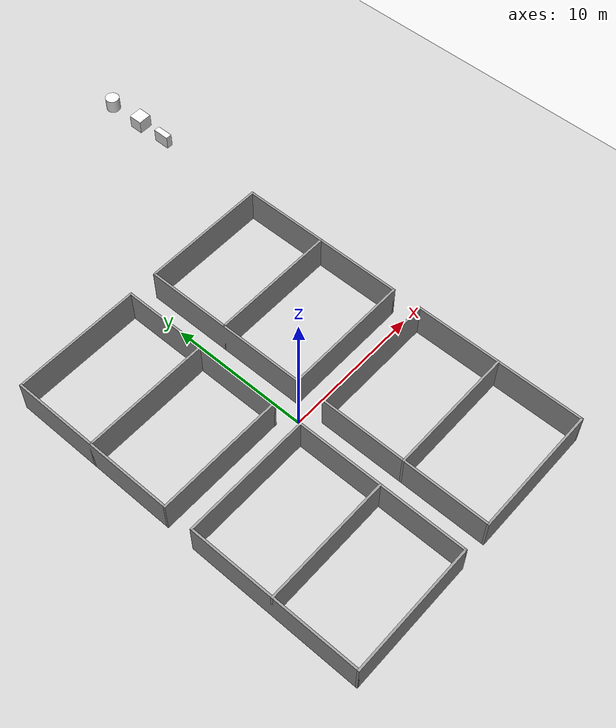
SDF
<sdf version="1.7">
 <world name="default">
  <light name="sun" type="directional">
   <pose>0 0 10 0 -0 0</pose>
   <diffuse>0.8 0.8 0.8 1</diffuse>
   <specular>0.2 0.2 0.2 1</specular>
   <attenuation>
    <range>1000</range>
    <constant>0.9</constant>
    <linear>0.01</linear>
    <quadratic>0.001</quadratic>
   </attenuation>
   <direction>-0.5 0.1 -0.9</direction>
   <spot><inner_angle>0</inner_angle><outer_angle>0</outer_angle><falloff>0</falloff></spot>
  </light>
  <model name="ground_plane">
   <static>1</static>
   <link name="link">
    <collision name="collision">
     <geometry><plane><normal>0 0 1</normal><size>100 100</size></plane></geometry>
     <surface>
      <contact><collide_bitmask>65535</collide_bitmask></contact>
      <friction><ode><mu>100</mu><mu2>50</mu2></ode></friction>
     </surface>
    </collision>
    <visual name="visual">
     <cast_shadows>0</cast_shadows>
     <geometry><plane><normal>0 0 1</normal><size>100 100</size></plane></geometry>
     <material>
      <script><uri>file://media/materials/scripts/gazebo.material</uri><name>Gazebo/Grey</name></script>
     </material>
    </visual>
   </link>
  </model>
  <gravity>0 0 -9.8</gravity>
  <magnetic_field>6e-06 2.3e-05 -4.2e-05</magnetic_field>
  <atmosphere type="adiabatic"/>
  <physics type="ode">
   <max_step_size>0.001</max_step_size>
   <real_time_factor>1</real_time_factor>
   <real_time_update_rate>1000</real_time_update_rate>
  </physics>
  <scene><ambient>0.4 0.4 0.4 1</ambient><background>0.7 0.7 0.7 1</background><shadows>1</shadows></scene>
  <spherical_coordinates>
   <surface_model>EARTH_WGS84</surface_model>
   <latitude_deg>0</latitude_deg>
   <longitude_deg>0</longitude_deg>
   <elevation>0</elevation>
   <heading_deg>0</heading_deg>
  </spherical_coordinates>
  <model name="Unit_Room_0">
   <pose>5.0375 6.5375 0 0 -0 0</pose>
   <link name="Wall_11">
    <collision name="Wall_11_Collision">
     <geometry><box><size>12.15 0.15 2.5</size></box></geometry>
     <pose>0 0 1.25 0 -0 0</pose>
    </collision>
    <visual name="Wall_11_Visual">
     <pose>0 0 1.25 0 -0 0</pose>
     <geometry><box><size>12.15 0.15 2.5</size></box></geometry>
     <material>
      <script><uri>file://media/materials/scripts/gazebo.material</uri><name>Gazebo/Grey</name></script>
      <ambient>1 1 1 1</ambient>
     </material>
     <meta><layer>0</layer></meta>
    </visual>
    <pose>4.9625 0.4625 0 0 -0 1.5708</pose>
   </link>
   <link name="Wall_3">
    <collision name="Wall_3_Collision">
     <geometry><box><size>9.15 0.15 2.5</size></box></geometry>
     <pose>0 0 1.25 0 -0 0</pose>
    </collision>
    <visual name="Wall_3_Visual">
     <pose>0 0 1.25 0 -0 0</pose>
     <geometry><box><size>9.15 0.15 2.5</size></box></geometry>
     <material>
      <script><uri>file://media/materials/scripts/gazebo.material</uri><name>Gazebo/Grey</name></script>
      <ambient>1 1 1 1</ambient>
     </material>
     <meta><layer>0</layer></meta>
    </visual>
    <pose>0.4625 -5.5375 0 0 -0 0</pose>
   </link>
   <link name="Wall_5">
    <collision name="Wall_5_Collision">
     <geometry><box><size>9.15 0.15 2.5</size></box></geometry>
     <pose>0 0 1.25 0 -0 0</pose>
    </collision>
    <visual name="Wall_5_Visual">
     <pose>0 0 1.25 0 -0 0</pose>
     <geometry><box><size>9.15 0.15 2.5</size></box></geometry>
     <material>
      <script><uri>file://media/materials/scripts/gazebo.material</uri><name>Gazebo/Grey</name></script>
      <ambient>1 1 1 1</ambient>
     </material>
     <meta><layer>0</layer></meta>
    </visual>
    <pose>0.4625 0.4625 0 0 -0 0</pose>
   </link>
   <link name="Wall_7">
    <collision name="Wall_7_Collision">
     <geometry><box><size>9.15 0.15 2.5</size></box></geometry>
     <pose>0 0 1.25 0 -0 0</pose>
    </collision>
    <visual name="Wall_7_Visual">
     <pose>0 0 1.25 0 -0 0</pose>
     <geometry><box><size>9.15 0.15 2.5</size></box></geometry>
     <material>
      <script><uri>file://media/materials/scripts/gazebo.material</uri><name>Gazebo/Grey</name></script>
      <ambient>1 1 1 1</ambient>
     </material>
     <meta><layer>0</layer></meta>
    </visual>
    <pose>0.4625 6.4625 0 0 -0 0</pose>
   </link>
   <link name="Wall_9">
    <collision name="Wall_9_Collision">
     <geometry><box><size>12.15 0.15 2.5</size></box></geometry>
     <pose>0 0 1.25 0 -0 0</pose>
    </collision>
    <visual name="Wall_9_Visual">
     <pose>0 0 1.25 0 -0 0</pose>
     <geometry><box><size>12.15 0.15 2.5</size></box></geometry>
     <material>
      <script><uri>file://media/materials/scripts/gazebo.material</uri><name>Gazebo/Grey</name></script>
      <ambient>1 1 1 1</ambient>
     </material>
     <meta><layer>0</layer></meta>
    </visual>
    <pose>-4.0375 0.4625 0 0 -0 1.5708</pose>
   </link>
   <static>1</static>
  </model>
  <model name="Unit_Room_1">
   <pose>5.0375 -7.5375 0 0 -0 0</pose>
   <link name="Wall_11">
    <collision name="Wall_11_Collision">
     <geometry><box><size>12.15 0.15 2.5</size></box></geometry>
     <pose>0 0 1.25 0 -0 0</pose>
    </collision>
    <visual name="Wall_11_Visual">
     <pose>0 0 1.25 0 -0 0</pose>
     <geometry><box><size>12.15 0.15 2.5</size></box></geometry>
     <material>
      <script><uri>file://media/materials/scripts/gazebo.material</uri><name>Gazebo/Grey</name></script>
      <ambient>1 1 1 1</ambient>
     </material>
     <meta><layer>0</layer></meta>
    </visual>
    <pose>4.9625 0.4625 0 0 -0 1.5708</pose>
   </link>
   <link name="Wall_3">
    <collision name="Wall_3_Collision">
     <geometry><box><size>9.15 0.15 2.5</size></box></geometry>
     <pose>0 0 1.25 0 -0 0</pose>
    </collision>
    <visual name="Wall_3_Visual">
     <pose>0 0 1.25 0 -0 0</pose>
     <geometry><box><size>9.15 0.15 2.5</size></box></geometry>
     <material>
      <script><uri>file://media/materials/scripts/gazebo.material</uri><name>Gazebo/Grey</name></script>
      <ambient>1 1 1 1</ambient>
     </material>
     <meta><layer>0</layer></meta>
    </visual>
    <pose>0.4625 -5.5375 0 0 -0 0</pose>
   </link>
   <link name="Wall_5">
    <collision name="Wall_5_Collision">
     <geometry><box><size>9.15 0.15 2.5</size></box></geometry>
     <pose>0 0 1.25 0 -0 0</pose>
    </collision>
    <visual name="Wall_5_Visual">
     <pose>0 0 1.25 0 -0 0</pose>
     <geometry><box><size>9.15 0.15 2.5</size></box></geometry>
     <material>
      <script><uri>file://media/materials/scripts/gazebo.material</uri><name>Gazebo/Grey</name></script>
      <ambient>1 1 1 1</ambient>
     </material>
     <meta><layer>0</layer></meta>
    </visual>
    <pose>0.4625 0.4625 0 0 -0 0</pose>
   </link>
   <link name="Wall_7">
    <collision name="Wall_7_Collision">
     <geometry><box><size>9.15 0.15 2.5</size></box></geometry>
     <pose>0 0 1.25 0 -0 0</pose>
    </collision>
    <visual name="Wall_7_Visual">
     <pose>0 0 1.25 0 -0 0</pose>
     <geometry><box><size>9.15 0.15 2.5</size></box></geometry>
     <material>
      <script><uri>file://media/materials/scripts/gazebo.material</uri><name>Gazebo/Grey</name></script>
      <ambient>1 1 1 1</ambient>
     </material>
     <meta><layer>0</layer></meta>
    </visual>
    <pose>0.4625 6.4625 0 0 -0 0</pose>
   </link>
   <link name="Wall_9">
    <collision name="Wall_9_Collision">
     <geometry><box><size>12.15 0.15 2.5</size></box></geometry>
     <pose>0 0 1.25 0 -0 0</pose>
    </collision>
    <visual name="Wall_9_Visual">
     <pose>0 0 1.25 0 -0 0</pose>
     <geometry><box><size>12.15 0.15 2.5</size></box></geometry>
     <material>
      <script><uri>file://media/materials/scripts/gazebo.material</uri><name>Gazebo/Grey</name></script>
      <ambient>1 1 1 1</ambient>
     </material>
     <meta><layer>0</layer></meta>
    </visual>
    <pose>-4.0375 0.4625 0 0 -0 1.5708</pose>
   </link>
   <static>1</static>
  </model>
  <model name="Unit_Room_2">
   <pose>-6.0375 6.5375 0 0 -0 0</pose>
   <link name="Wall_11">
    <collision name="Wall_11_Collision">
     <geometry><box><size>12.15 0.15 2.5</size></box></geometry>
     <pose>0 0 1.25 0 -0 0</pose>
    </collision>
    <visual name="Wall_11_Visual">
     <pose>0 0 1.25 0 -0 0</pose>
     <geometry><box><size>12.15 0.15 2.5</size></box></geometry>
     <material>
      <script><uri>file://media/materials/scripts/gazebo.material</uri><name>Gazebo/Grey</name></script>
      <ambient>1 1 1 1</ambient>
     </material>
     <meta><layer>0</layer></meta>
    </visual>
    <pose>4.9625 0.4625 0 0 -0 1.5708</pose>
   </link>
   <link name="Wall_3">
    <collision name="Wall_3_Collision">
     <geometry><box><size>9.15 0.15 2.5</size></box></geometry>
     <pose>0 0 1.25 0 -0 0</pose>
    </collision>
    <visual name="Wall_3_Visual">
     <pose>0 0 1.25 0 -0 0</pose>
     <geometry><box><size>9.15 0.15 2.5</size></box></geometry>
     <material>
      <script><uri>file://media/materials/scripts/gazebo.material</uri><name>Gazebo/Grey</name></script>
      <ambient>1 1 1 1</ambient>
     </material>
     <meta><layer>0</layer></meta>
    </visual>
    <pose>0.4625 -5.5375 0 0 -0 0</pose>
   </link>
   <link name="Wall_5">
    <collision name="Wall_5_Collision">
     <geometry><box><size>9.15 0.15 2.5</size></box></geometry>
     <pose>0 0 1.25 0 -0 0</pose>
    </collision>
    <visual name="Wall_5_Visual">
     <pose>0 0 1.25 0 -0 0</pose>
     <geometry><box><size>9.15 0.15 2.5</size></box></geometry>
     <material>
      <script><uri>file://media/materials/scripts/gazebo.material</uri><name>Gazebo/Grey</name></script>
      <ambient>1 1 1 1</ambient>
     </material>
     <meta><layer>0</layer></meta>
    </visual>
    <pose>0.4625 0.4625 0 0 -0 0</pose>
   </link>
   <link name="Wall_7">
    <collision name="Wall_7_Collision">
     <geometry><box><size>9.15 0.15 2.5</size></box></geometry>
     <pose>0 0 1.25 0 -0 0</pose>
    </collision>
    <visual name="Wall_7_Visual">
     <pose>0 0 1.25 0 -0 0</pose>
     <geometry><box><size>9.15 0.15 2.5</size></box></geometry>
     <material>
      <script><uri>file://media/materials/scripts/gazebo.material</uri><name>Gazebo/Grey</name></script>
      <ambient>1 1 1 1</ambient>
     </material>
     <meta><layer>0</layer></meta>
    </visual>
    <pose>0.4625 6.4625 0 0 -0 0</pose>
   </link>
   <link name="Wall_9">
    <collision name="Wall_9_Collision">
     <geometry><box><size>12.15 0.15 2.5</size></box></geometry>
     <pose>0 0 1.25 0 -0 0</pose>
    </collision>
    <visual name="Wall_9_Visual">
     <pose>0 0 1.25 0 -0 0</pose>
     <geometry><box><size>12.15 0.15 2.5</size></box></geometry>
     <material>
      <script><uri>file://media/materials/scripts/gazebo.material</uri><name>Gazebo/Grey</name></script>
      <ambient>1 1 1 1</ambient>
     </material>
     <meta><layer>0</layer></meta>
    </visual>
    <pose>-4.0375 0.4625 0 0 -0 1.5708</pose>
   </link>
   <static>1</static>
  </model>
  <model name="Unit_Room_3">
   <pose>-6.0375 -7.5375 0 0 -0 0</pose>
   <link name="Wall_11">
    <collision name="Wall_11_Collision">
     <geometry><box><size>12.15 0.15 2.5</size></box></geometry>
     <pose>0 0 1.25 0 -0 0</pose>
    </collision>
    <visual name="Wall_11_Visual">
     <pose>0 0 1.25 0 -0 0</pose>
     <geometry><box><size>12.15 0.15 2.5</size></box></geometry>
     <material>
      <script><uri>file://media/materials/scripts/gazebo.material</uri><name>Gazebo/Grey</name></script>
      <ambient>1 1 1 1</ambient>
     </material>
     <meta><layer>0</layer></meta>
    </visual>
    <pose>4.9625 0.4625 0 0 -0 1.5708</pose>
   </link>
   <link name="Wall_3">
    <collision name="Wall_3_Collision">
     <geometry><box><size>9.15 0.15 2.5</size></box></geometry>
     <pose>0 0 1.25 0 -0 0</pose>
    </collision>
    <visual name="Wall_3_Visual">
     <pose>0 0 1.25 0 -0 0</pose>
     <geometry><box><size>9.15 0.15 2.5</size></box></geometry>
     <material>
      <script><uri>file://media/materials/scripts/gazebo.material</uri><name>Gazebo/Grey</name></script>
      <ambient>1 1 1 1</ambient>
     </material>
     <meta><layer>0</layer></meta>
    </visual>
    <pose>0.4625 -5.5375 0 0 -0 0</pose>
   </link>
   <link name="Wall_5">
    <collision name="Wall_5_Collision">
     <geometry><box><size>9.15 0.15 2.5</size></box></geometry>
     <pose>0 0 1.25 0 -0 0</pose>
    </collision>
    <visual name="Wall_5_Visual">
     <pose>0 0 1.25 0 -0 0</pose>
     <geometry><box><size>9.15 0.15 2.5</size></box></geometry>
     <material>
      <script><uri>file://media/materials/scripts/gazebo.material</uri><name>Gazebo/Grey</name></script>
      <ambient>1 1 1 1</ambient>
     </material>
     <meta><layer>0</layer></meta>
    </visual>
    <pose>0.4625 0.4625 0 0 -0 0</pose>
   </link>
   <link name="Wall_7">
    <collision name="Wall_7_Collision">
     <geometry><box><size>9.15 0.15 2.5</size></box></geometry>
     <pose>0 0 1.25 0 -0 0</pose>
    </collision>
    <visual name="Wall_7_Visual">
     <pose>0 0 1.25 0 -0 0</pose>
     <geometry><box><size>9.15 0.15 2.5</size></box></geometry>
     <material>
      <script><uri>file://media/materials/scripts/gazebo.material</uri><name>Gazebo/Grey</name></script>
      <ambient>1 1 1 1</ambient>
     </material>
     <meta><layer>0</layer></meta>
    </visual>
    <pose>0.4625 6.4625 0 0 -0 0</pose>
   </link>
   <link name="Wall_9">
    <collision name="Wall_9_Collision">
     <geometry><box><size>12.15 0.15 2.5</size></box></geometry>
     <pose>0 0 1.25 0 -0 0</pose>
    </collision>
    <visual name="Wall_9_Visual">
     <pose>0 0 1.25 0 -0 0</pose>
     <geometry><box><size>12.15 0.15 2.5</size></box></geometry>
     <material>
      <script><uri>file://media/materials/scripts/gazebo.material</uri><name>Gazebo/Grey</name></script>
      <ambient>1 1 1 1</ambient>
     </material>
     <meta><layer>0</layer></meta>
    </visual>
    <pose>-4.0375 0.4625 0 0 -0 1.5708</pose>
   </link>
   <static>1</static>
  </model>
  <model name="unit_cylinder_0">
   <pose>10.8699 27.5125 0.5 0 -0 0</pose>
   <link name="link">
    <inertial>
     <mass>1</mass>
     <inertia><ixx>0.145833</ixx><ixy>0</ixy><ixz>0</ixz><iyy>0.145833</iyy><iyz>0</iyz><izz>0.125</izz></inertia>
    </inertial>
    <collision name="collision">
     <geometry><cylinder><radius>0.5</radius><length>1</length></cylinder></geometry>
    </collision>
    <visual name="visual">
     <geometry><cylinder><radius>0.5</radius><length>1</length></cylinder></geometry>
     <material>
      <script><name>Gazebo/White</name><uri>file://media/materials/scripts/gazebo.material</uri></script>
     </material>
    </visual>
   </link>
  </model>
  <model name="unit_box_0">
   <pose>10.9294 24.7304 0.5 0 -0 0</pose>
   <link name="link">
    <inertial>
     <mass>1</mass>
     <inertia>
      <ixx>0.166667</ixx>
      <ixy>0</ixy>
      <ixz>0</ixz>
      <iyy>0.166667</iyy>
      <iyz>0</iyz>
      <izz>0.166667</izz>
     </inertia>
    </inertial>
    <collision name="collision"><geometry><box><size>1 1 1</size></box></geometry></collision>
    <visual name="visual">
     <geometry><box><size>1 1 1</size></box></geometry>
     <material>
      <script><name>Gazebo/White</name><uri>file://media/materials/scripts/gazebo.material</uri></script>
     </material>
    </visual>
   </link>
  </model>
  <model name="unit_wall_0">
   <pose>10.8513 22.382 0.5 0 -0 0</pose>
   <link name="link">
    <inertial>
     <mass>1</mass>
     <inertia>
      <ixx>0.166667</ixx>
      <ixy>0</ixy>
      <ixz>0</ixz>
      <iyy>0.166667</iyy>
      <iyz>0</iyz>
      <izz>0.166667</izz>
     </inertia>
    </inertial>
    <collision name="collision"><geometry><box><size>0.45 1.2 1</size></box></geometry></collision>
    <visual name="visual">
     <geometry><box><size>0.45 1.2 1</size></box></geometry>
     <material>
      <script><name>Gazebo/White</name><uri>file://media/materials/scripts/gazebo.material</uri></script>
     </material>
    </visual>
   </link>
  </model>
 </world>
</sdf>
